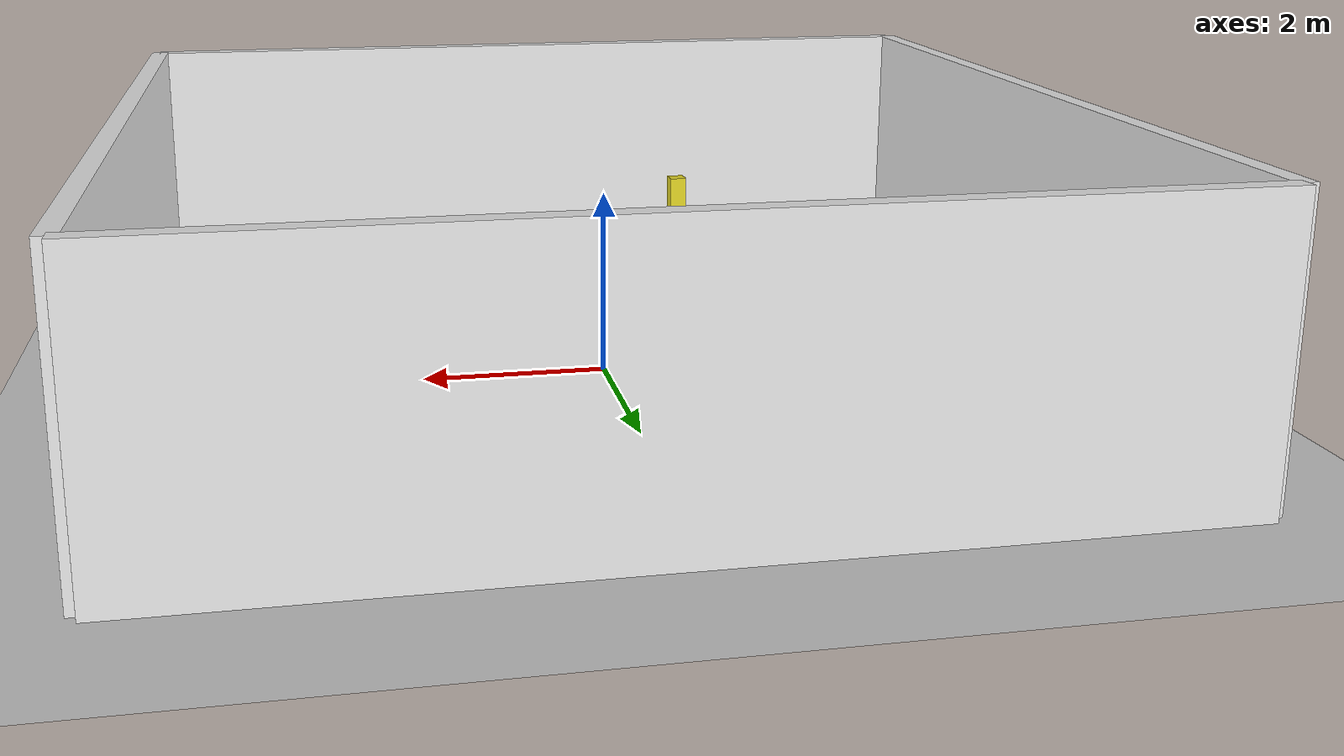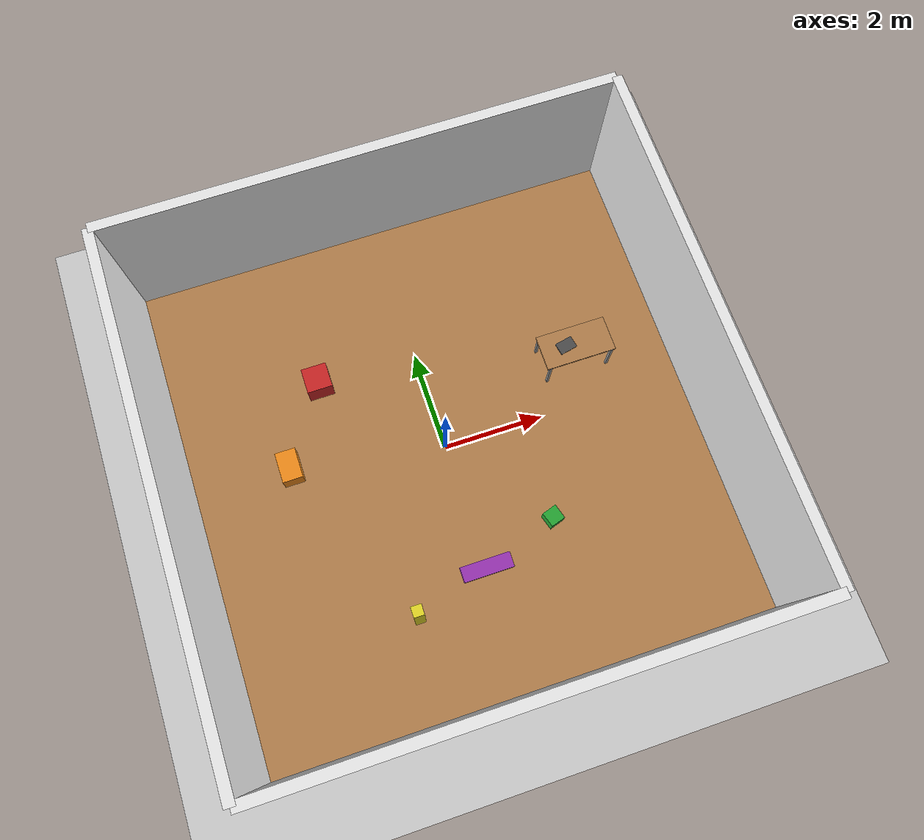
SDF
<?xml version="1.0"?>
<sdf version="1.7">
  <world name="office_world">

    <!-- ==================== PHYSICS ==================== -->
    <physics name="default_physics" type="ode">
      <max_step_size>0.001</max_step_size>
      <real_time_factor>1.0</real_time_factor>
      <real_time_update_rate>1000</real_time_update_rate>
      <gravity>0 0 -9.81</gravity>
      <ode>
        <solver>
          <type>quick</type>
          <iters>150</iters>
          <precon_iters>0</precon_iters>
          <sor>1.400000</sor>
          <use_dynamic_moi_rescaling>true</use_dynamic_moi_rescaling>
        </solver>
        <constraints>
          <cfm>0.00001</cfm>
          <erp>0.2</erp>
          <contact_max_correcting_vel>2000.0</contact_max_correcting_vel>
          <contact_surface_layer>0.01</contact_surface_layer>
        </constraints>
      </ode>
    </physics>

    <!-- ==================== SCENE LIGHTING ==================== -->
    <scene>
      <ambient>0.6 0.6 0.6 1</ambient>
      <background>0.7 0.8 1.0 1</background>
      <shadows>true</shadows>
    </scene>

    <!-- Sun light -->
    <light name="sun" type="directional">
      <cast_shadows>true</cast_shadows>
      <pose>0 0 10 0 -0.3 0.8</pose>
      <diffuse>0.9 0.9 0.9 1</diffuse>
      <specular>0.3 0.3 0.3 1</specular>
      <direction>-0.5 0.1 -0.9</direction>
      <attenuation>
        <range>1000</range>
        <constant>0.9</constant>
        <linear>0.01</linear>
        <quadratic>0.001</quadratic>
      </attenuation>
    </light>

    <!-- Ceiling office light 1 -->
    <light name="office_light_1" type="point">
      <pose>0 0 3 0 0 0</pose>
      <diffuse>0.8 0.8 0.75 1</diffuse>
      <specular>0.2 0.2 0.2 1</specular>
      <attenuation>
        <range>8</range>
        <constant>0.3</constant>
        <linear>0.05</linear>
        <quadratic>0.01</quadratic>
      </attenuation>
    </light>

    <!-- Ceiling office light 2 -->
    <light name="office_light_2" type="point">
      <pose>3 2 3 0 0 0</pose>
      <diffuse>0.8 0.8 0.75 1</diffuse>
      <specular>0.2 0.2 0.2 1</specular>
      <attenuation>
        <range>8</range>
        <constant>0.3</constant>
        <linear>0.05</linear>
        <quadratic>0.01</quadratic>
      </attenuation>
    </light>

    <!-- ==================== GROUND PLANE ==================== -->
    <model name="ground_plane">
      <static>true</static>
      <link name="link">
        <collision name="collision">
          <geometry>
            <plane>
              <normal>0 0 1</normal>
              <size>20 20</size>
            </plane>
          </geometry>
          <surface>
            <friction>
              <ode>
                <mu>1.0</mu>
                <mu2>1.0</mu2>
              </ode>
            </friction>
            <contact>
              <ode>
                <kp>1e6</kp>
                <kd>100</kd>
                <min_depth>0.001</min_depth>
              </ode>
            </contact>
          </surface>
        </collision>
        <visual name="visual">
          <geometry>
            <plane>
              <normal>0 0 1</normal>
              <size>20 20</size>
            </plane>
          </geometry>
          <material>
            <script>
              <uri>file://media/materials/scripts/gazebo.material</uri>
              <name>Gazebo/Grey</name>
            </script>
          </material>
        </visual>
      </link>
    </model>

    <!-- ==================== OFFICE FLOOR TILE OVERLAY ==================== -->
    <!-- Slightly above ground to show tile pattern -->
    <model name="office_floor">
      <static>true</static>
      <pose>0 0 0.001 0 0 0</pose>
      <link name="link">
        <visual name="visual">
          <geometry>
            <box>
              <size>10 10 0.001</size>
            </box>
          </geometry>
          <material>
            <script>
              <uri>file://media/materials/scripts/gazebo.material</uri>
              <name>Gazebo/Wood</name>
            </script>
          </material>
        </visual>
      </link>
    </model>

    <!-- ==================== WALLS ==================== -->

    <!-- South wall -->
    <model name="wall_south">
      <static>true</static>
      <pose>0 -5 1.5 0 0 0</pose>
      <link name="link">
        <collision name="collision">
          <geometry><box><size>10 0.2 3</size></box></geometry>
        </collision>
        <visual name="visual">
          <geometry><box><size>10 0.2 3</size></box></geometry>
          <material>
            <script>
              <uri>file://media/materials/scripts/gazebo.material</uri>
              <name>Gazebo/White</name>
            </script>
          </material>
        </visual>
      </link>
    </model>

    <!-- North wall -->
    <model name="wall_north">
      <static>true</static>
      <pose>0 5 1.5 0 0 0</pose>
      <link name="link">
        <collision name="collision">
          <geometry><box><size>10 0.2 3</size></box></geometry>
        </collision>
        <visual name="visual">
          <geometry><box><size>10 0.2 3</size></box></geometry>
          <material>
            <script>
              <uri>file://media/materials/scripts/gazebo.material</uri>
              <name>Gazebo/White</name>
            </script>
          </material>
        </visual>
      </link>
    </model>

    <!-- West wall -->
    <model name="wall_west">
      <static>true</static>
      <pose>-5 0 1.5 0 0 0</pose>
      <link name="link">
        <collision name="collision">
          <geometry><box><size>0.2 10 3</size></box></geometry>
        </collision>
        <visual name="visual">
          <geometry><box><size>0.2 10 3</size></box></geometry>
          <material>
            <script>
              <uri>file://media/materials/scripts/gazebo.material</uri>
              <name>Gazebo/White</name>
            </script>
          </material>
        </visual>
      </link>
    </model>

    <!-- East wall -->
    <model name="wall_east">
      <static>true</static>
      <pose>5 0 1.5 0 0 0</pose>
      <link name="link">
        <collision name="collision">
          <geometry><box><size>0.2 10 3</size></box></geometry>
        </collision>
        <visual name="visual">
          <geometry><box><size>0.2 10 3</size></box></geometry>
          <material>
            <script>
              <uri>file://media/materials/scripts/gazebo.material</uri>
              <name>Gazebo/White</name>
            </script>
          </material>
        </visual>
      </link>
    </model>

    <!-- ==================== DESK / TABLE ==================== -->

    <!-- Table top -->
    <model name="desk_top">
      <static>true</static>
      <pose>3.0 1.0 0.75 0 0 0</pose>
      <link name="link">
        <collision name="collision">
          <geometry><box><size>1.4 0.7 0.04</size></box></geometry>
        </collision>
        <visual name="visual">
          <geometry><box><size>1.4 0.7 0.04</size></box></geometry>
          <material>
            <script>
              <uri>file://media/materials/scripts/gazebo.material</uri>
              <name>Gazebo/Wood</name>
            </script>
          </material>
        </visual>
      </link>
    </model>

    <!-- Table leg FL -->
    <model name="desk_leg_fl">
      <static>true</static>
      <pose>2.37 0.67 0.37 0 0 0</pose>
      <link name="link">
        <collision name="collision">
          <geometry><box><size>0.05 0.05 0.75</size></box></geometry>
        </collision>
        <visual name="visual">
          <geometry><box><size>0.05 0.05 0.75</size></box></geometry>
          <material>
            <script>
              <uri>file://media/materials/scripts/gazebo.material</uri>
              <name>Gazebo/Gray</name>
            </script>
          </material>
        </visual>
      </link>
    </model>

    <!-- Table leg FR -->
    <model name="desk_leg_fr">
      <static>true</static>
      <pose>3.63 0.67 0.37 0 0 0</pose>
      <link name="link">
        <collision name="collision">
          <geometry><box><size>0.05 0.05 0.75</size></box></geometry>
        </collision>
        <visual name="visual">
          <geometry><box><size>0.05 0.05 0.75</size></box></geometry>
          <material>
            <script>
              <uri>file://media/materials/scripts/gazebo.material</uri>
              <name>Gazebo/Gray</name>
            </script>
          </material>
        </visual>
      </link>
    </model>

    <!-- Table leg RL -->
    <model name="desk_leg_rl">
      <static>true</static>
      <pose>2.37 1.33 0.37 0 0 0</pose>
      <link name="link">
        <collision name="collision">
          <geometry><box><size>0.05 0.05 0.75</size></box></geometry>
        </collision>
        <visual name="visual">
          <geometry><box><size>0.05 0.05 0.75</size></box></geometry>
          <material>
            <script>
              <uri>file://media/materials/scripts/gazebo.material</uri>
              <name>Gazebo/Gray</name>
            </script>
          </material>
        </visual>
      </link>
    </model>

    <!-- Table leg RR -->
    <model name="desk_leg_rr">
      <static>true</static>
      <pose>3.63 1.33 0.37 0 0 0</pose>
      <link name="link">
        <collision name="collision">
          <geometry><box><size>0.05 0.05 0.75</size></box></geometry>
        </collision>
        <visual name="visual">
          <geometry><box><size>0.05 0.05 0.75</size></box></geometry>
          <material>
            <script>
              <uri>file://media/materials/scripts/gazebo.material</uri>
              <name>Gazebo/Gray</name>
            </script>
          </material>
        </visual>
      </link>
    </model>

    <!-- Laptop on desk (decorative box) -->
    <model name="laptop">
      <static>true</static>
      <pose>2.8 1.0 0.795 0 0 0.2</pose>
      <link name="link">
        <collision name="collision">
          <geometry><box><size>0.35 0.24 0.02</size></box></geometry>
        </collision>
        <visual name="visual">
          <geometry><box><size>0.35 0.24 0.02</size></box></geometry>
          <material>
            <script>
              <uri>file://media/materials/scripts/gazebo.material</uri>
              <name>Gazebo/DarkGray</name>
            </script>
          </material>
        </visual>
      </link>
    </model>

    <!-- ==================== OBSTACLES ==================== -->

    <!-- Obstacle box 1: Large box near wall -->
    <model name="obstacle_box_1">
      <static>true</static>
      <pose>-2.0 2.0 0.25 0 0 0</pose>
      <link name="link">
        <collision name="collision">
          <geometry><box><size>0.5 0.5 0.5</size></box></geometry>
          <surface>
            <friction>
              <ode><mu>0.8</mu><mu2>0.8</mu2></ode>
            </friction>
          </surface>
        </collision>
        <visual name="visual">
          <geometry><box><size>0.5 0.5 0.5</size></box></geometry>
          <material>
            <script>
              <uri>file://media/materials/scripts/gazebo.material</uri>
              <name>Gazebo/Red</name>
            </script>
          </material>
        </visual>
      </link>
    </model>

    <!-- Obstacle box 2: Small box near center -->
    <model name="obstacle_box_2">
      <static>true</static>
      <pose>1.5 -2.0 0.15 0 0 0.3</pose>
      <link name="link">
        <collision name="collision">
          <geometry><box><size>0.3 0.3 0.3</size></box></geometry>
        </collision>
        <visual name="visual">
          <geometry><box><size>0.3 0.3 0.3</size></box></geometry>
          <material>
            <script>
              <uri>file://media/materials/scripts/gazebo.material</uri>
              <name>Gazebo/Green</name>
            </script>
          </material>
        </visual>
      </link>
    </model>

    <!-- Obstacle box 3: Tall thin pillar -->
    <model name="obstacle_pillar">
      <static>true</static>
      <pose>-1.5 -3.0 0.75 0 0 0</pose>
      <link name="link">
        <collision name="collision">
          <geometry><box><size>0.2 0.2 1.5</size></box></geometry>
        </collision>
        <visual name="visual">
          <geometry><box><size>0.2 0.2 1.5</size></box></geometry>
          <material>
            <script>
              <uri>file://media/materials/scripts/gazebo.material</uri>
              <name>Gazebo/Yellow</name>
            </script>
          </material>
        </visual>
      </link>
    </model>

    <!-- Obstacle box 4: Medium obstacle -->
    <model name="obstacle_box_4">
      <static>true</static>
      <pose>-3.0 0.5 0.2 0 0 0</pose>
      <link name="link">
        <collision name="collision">
          <geometry><box><size>0.4 0.6 0.4</size></box></geometry>
        </collision>
        <visual name="visual">
          <geometry><box><size>0.4 0.6 0.4</size></box></geometry>
          <material>
            <script>
              <uri>file://media/materials/scripts/gazebo.material</uri>
              <name>Gazebo/Orange</name>
            </script>
          </material>
        </visual>
      </link>
    </model>

    <!-- Small step obstacle -->
    <model name="step_obstacle">
      <static>true</static>
      <pose>0.0 -2.5 0.05 0 0 0</pose>
      <link name="link">
        <collision name="collision">
          <geometry><box><size>1.0 0.3 0.1</size></box></geometry>
        </collision>
        <visual name="visual">
          <geometry><box><size>1.0 0.3 0.1</size></box></geometry>
          <material>
            <script>
              <uri>file://media/materials/scripts/gazebo.material</uri>
              <name>Gazebo/Purple</name>
            </script>
          </material>
        </visual>
      </link>
    </model>

    <!-- ==================== GUI CAMERA ==================== -->
    <gui fullscreen="0">
      <camera name="user_camera">
        <pose>-2.5 -3.5 2.5 0 0.4 0.7</pose>
        <view_controller>orbit</view_controller>
        <projection_type>perspective</projection_type>
      </camera>
    </gui>

  </world>
</sdf>
